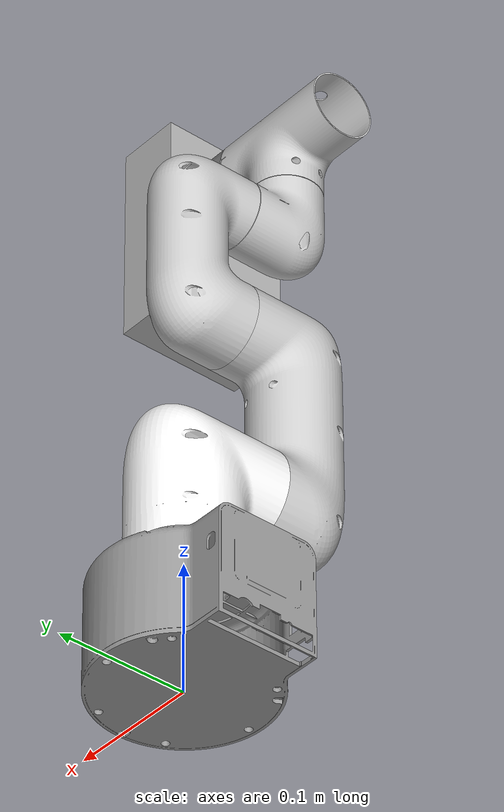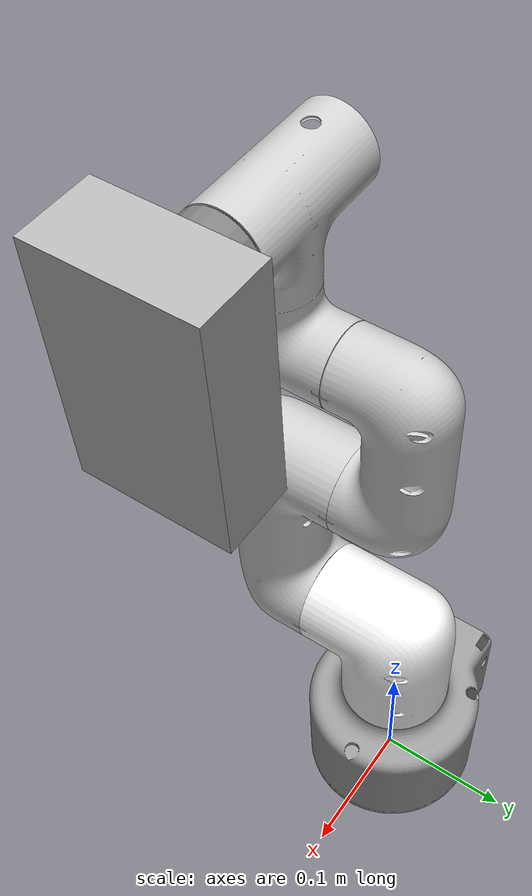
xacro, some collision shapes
<?xml version="1.0"?>
<robot xmlns:xacro="http://www.ros.org/wiki/xacro" name="mycobot320">

  <xacro:include filename="$(find mycobot_description)/urdf/common.xacro" />
  <xacro:property name="width" value=".2" />

  <link name="base">
    <inertial>
       <!-- temporary inertia parameter copied from mycobot 280-->
      <origin xyz="0 0 0.035" rpy="0 0 0" />
      <mass value="10.0" />
      <xacro:cylinder_inertia m="10.0" r="0.05" h="0.07" />
    </inertial>
    <visual>
      <geometry>
        <mesh filename="package://mycobot_description/urdf/320_urdf/mesh/base.dae"/>
      </geometry>
      <origin xyz = "0 0 0 " rpy = " 0 0 0"/>
    </visual>
    <collision>
      <origin xyz = "0 0 0.05 " rpy = " 0 0 0"/>
      <geometry>
        <cylinder length="0.102" radius="0.0725"/>
      </geometry>
    </collision>
  </link>

  <link name="link1">
    <!-- temporary inertia parameter copied from mycobot 280-->
    <inertial>
      <origin xyz="0 0 0.060" rpy="0 0 0" />
      <mass value="0.2" />
      <xacro:cylinder_inertia m="0.2" r="0.05" h="0.08" />
    </inertial>
    <visual>
      <geometry>
        <mesh filename="package://mycobot_description/urdf/320_urdf/mesh/link1.dae"/>
      </geometry>
      <origin xyz = "0 0 0 " rpy = " 0 0 0"/>
    </visual>
    <collision>
      <origin xyz = "0 0 -0.02 " rpy = " 0 0 0"/>
      <geometry>
        <cylinder length="0.106" radius="0.043"/>
      </geometry>
    </collision>
  </link>

  <link name="link2">
    <!-- temporary inertia parameter copied from mycobot 280-->
    <inertial>
      <origin xyz="0.01 0 0.06" rpy="0 0 0" />
      <mass value="0.4" />
      <xacro:cylinder_inertia m="0.4" r="0.05" h="0.155" />
    </inertial>
    <visual>
      <geometry>
        <mesh filename="package://mycobot_description/urdf/320_urdf/mesh/link2.dae"/>
      </geometry>
      <origin xyz = "0 0 0.0587 " rpy = " 0 0 3.1415926"/>
    </visual>
    <collision>
      <origin xyz = "0.07 0 0.095 " rpy = " 0 -1.5708 0"/>
      <geometry>
        <cylinder length="0.18" radius="0.036"/>
      </geometry>
    </collision>
  </link>

  <link name="link3">
    <!-- temporary inertia parameter copied from mycobot 280-->
    <inertial>
      <origin xyz="-0.01 0 0.05" rpy="0 0 0" />
      <mass value="0.4" />
      <xacro:cylinder_inertia m="0.4" r="0.05" h="0.155" />
    </inertial>
    <visual>
      <geometry>
        <mesh filename="package://mycobot_description/urdf/320_urdf/mesh/link3.dae"/>
      </geometry>
      <origin xyz = "0 0 0.038 " rpy = " 0 0 3.1415926"/>
    </visual>
    <collision>
      <origin xyz = "0.044 0 0 " rpy = " 0 -1.5708 0"/>
      <geometry>
        <cylinder length="0.14" radius="0.0305"/>
      </geometry>
    </collision>
  </link>

  <link name="link4">
    <!-- temporary inertia parameter copied from mycobot 280-->
    <inertial>
      <origin xyz="0 0 0.05" rpy="0 0 0" />
      <mass value="0.2" />
      <xacro:cylinder_inertia m="0.2" r="0.05" h="0.05" />
    </inertial>
    <visual>
      <geometry>
        <mesh filename="package://mycobot_description/urdf/320_urdf/mesh/link4.dae"/>
      </geometry>
      <origin xyz = "0 -0.001 0 " rpy = " 0 0 0"/>
    </visual>
    <collision>
      <origin xyz = "0.0 -0.014 0 " rpy = " 0 -1.5708 1.5708"/>
      <geometry>
        <cylinder length="0.083" radius="0.029"/>
      </geometry>
    </collision>
  </link>

  <link name="link5">
    <!-- temporary inertia parameter copied from mycobot 280-->
    <inertial>
      <origin xyz="0 0 0.037" rpy="0 0 0" />
      <mass value="0.5" />
      <xacro:cylinder_inertia m="0.5" r="0.05" h="0.06" />
    </inertial>
    <visual>
      <geometry>
        <mesh filename="package://mycobot_description/urdf/320_urdf/mesh/link5.dae"/>
      </geometry>
      <origin xyz = "0 0.002  0 " rpy = " 0  0 3.1415926"/>
    </visual>
    <collision>
      <origin xyz = "0 -0.01 0 " rpy = " 1.5708 1.5708 0"/>
      <geometry>
        <cylinder length="0.0849" radius="0.029"/>
      </geometry>
    </collision>
  </link>

  <link name="link6">
    <!-- temporary inertia parameter copied from mycobot 280-->
    <inertial>
      <origin xyz="0 0.0025 0" rpy="${M_PI/2} 0 0" />
      <mass value="0.1" />
      <xacro:cylinder_inertia m="0.1" r="0.02" h="0.005" />
    </inertial>
    <visual>
      <geometry>
        <cylinder length="0.02" radius="0.026"/>
      </geometry>
      <material name = "grey">
        <color rgba = "0.5 0.5 0.5 1"/>
      </material>
      <origin xyz = "0 0 -0.01 " rpy = " 0 0 0"/>
    </visual>
    <collision>
      <origin xyz = "0.0 0 -0.01 " rpy = " 0 0 0"/>
      <geometry>
        <cylinder length="0.0225" radius="0.026"/>
      </geometry>
    </collision>
  </link>

   <link name="gripper">
    <!-- temporary inertia parameter -->
    <inertial>
      <origin xyz="0 0 0.03" rpy="0 0 0" />
      <mass value="0.1" />
      <xacro:cylinder_inertia m="0.1" r="0.02" h="0.005" />
    </inertial>
    <visual>
      <geometry>
        <mesh filename="package://mycobot_description/urdf/320_urdf/mesh/gripper.dae"/>
      </geometry>
      <origin xyz = "0 0 0" rpy = "0 0 0"/>
    </visual>
    <collision>
      <origin xyz = "0 0.04 0.03" rpy = "0 0 ${pi/2}"/>
      <geometry>
        <box size="0.16 0.1 0.05"/>
      </geometry>
    </collision>
  </link>

  <joint name="joint1" type="revolute">
    <axis xyz="0 0 1"/>
    <limit effort = "100.0" lower = "${-pi}" upper = "${pi}" velocity = "1.0"/>
    <parent link="base"/>
    <child link="link1"/>
    <origin xyz= "0 0 0.17846" rpy = "0 0 0"/>
    <dynamics damping="1.0e-6" friction="2.0e-1" />
  </joint>

  <joint name="joint2" type="revolute">
    <axis xyz="0 0 1"/>
    <limit effort = "100.0" lower = "${-pi}" upper = "${pi}" velocity = "1.0"/>
    <parent link="link1"/>
    <child link="link2"/>
    <origin xyz= "0 0 0" rpy = "0 -1.57080  1.57080"/>
    <dynamics damping="1.0e-6" friction="2.0e-1" />
  </joint>

  <joint name="joint3" type="revolute">
    <axis xyz=" 0 0 1"/>
    <limit effort = "100.0" lower = "${-pi}" upper = "${pi}" velocity = "1.0"/>
    <parent link="link2"/>
    <child link="link3"/>
    <origin xyz= "0.13635 0 0" rpy = "0 0 0"/>
    <dynamics damping="1.0e-6" friction="2.0e-1" />
  </joint>

  <joint name="joint4" type="revolute">
    <axis xyz=" 0 0 1"/>
    <limit effort = "100.0" lower = "${-pi}" upper = "${pi}" velocity = "1.0"/>
    <parent link="link3"/>
    <child link="link4"/>
    <origin xyz= "0.1 0  0.090" rpy = "0 0 1.57080"/>
    <dynamics damping="1.0e-6" friction="2.0e-1" />
  </joint>

  <joint name="joint5" type="revolute">
    <axis xyz="0 0 1"/>
    <limit effort = "100.0" lower = "${-pi}" upper = "${pi}" velocity = "1.0"/>
    <parent link="link4"/>
    <child link="link5"/>
    <origin xyz= "0 -0.08515 0" rpy = "1.57080 -1.57080 0"/>
    <dynamics damping="1.0e-6" friction="2.0e-1" />
  </joint>

  <joint name="joint6" type="revolute">
    <axis xyz="0 0 1"/>
    <limit effort = "100.0" lower = "${-pi}" upper = "${pi}" velocity = "1.0"/>
    <parent link="link5"/>
    <child link="link6"/>
    <origin xyz= "0 0.06 0" rpy = "-1.57080 0 0 "/>
    <dynamics damping="1.0e-6" friction="2.0e-1" />
  </joint>

  <joint name="gripper_to_link6" type="fixed">
    <axis xyz="0 0 0"/>
    <parent link="link6"/>
    <child link="gripper"/>
    <origin xyz= "0 0 0" rpy = "0 0 0 "/>
  </joint>

  <transmission name="joint1_trans">
    <provideFeedback>true</provideFeedback>
    <implicitSpringDamper>0</implicitSpringDamper>
    <motorTorqueConstant>0.418</motorTorqueConstant>
    <type>transmission_interface/SimpleTransmission</type>
    <joint name="joint1">
      <hardwareInterface>hardware_interface/PositionJointInterface</hardwareInterface>
    </joint>
    <actuator name="joint1_motor">
      <hardwareInterface>hardware_interface/PositionJointInterface</hardwareInterface>
      <mechanicalReduction>1</mechanicalReduction>
    </actuator>
  </transmission>
  <transmission name="joint2_trans">
    <provideFeedback>true</provideFeedback>
    <implicitSpringDamper>0</implicitSpringDamper>
    <motorTorqueConstant>0.418</motorTorqueConstant>
    <type>transmission_interface/SimpleTransmission</type>
    <joint name="joint2">
      <hardwareInterface>hardware_interface/PositionJointInterface</hardwareInterface>
    </joint>
    <actuator name="joint2_motor">
      <hardwareInterface>hardware_interface/PositionJointInterface</hardwareInterface>
      <mechanicalReduction>1</mechanicalReduction>
    </actuator>
  </transmission>
  <transmission name="joint3_trans">
    <provideFeedback>true</provideFeedback>
    <implicitSpringDamper>0</implicitSpringDamper>
    <motorTorqueConstant>0.418</motorTorqueConstant>
    <type>transmission_interface/SimpleTransmission</type>
    <joint name="joint3">
      <hardwareInterface>hardware_interface/PositionJointInterface</hardwareInterface>
    </joint>
    <actuator name="joint3_motor">
      <hardwareInterface>hardware_interface/PositionJointInterface</hardwareInterface>
      <mechanicalReduction>1</mechanicalReduction>
    </actuator>
  </transmission>
  <transmission name="joint4_trans">
    <provideFeedback>true</provideFeedback>
    <implicitSpringDamper>0</implicitSpringDamper>
    <motorTorqueConstant>0.418</motorTorqueConstant>
    <type>transmission_interface/SimpleTransmission</type>
    <joint name="joint4">
      <hardwareInterface>hardware_interface/PositionJointInterface</hardwareInterface>
    </joint>
    <actuator name="joint4_motor">
      <hardwareInterface>hardware_interface/PositionJointInterface</hardwareInterface>
      <mechanicalReduction>1</mechanicalReduction>
    </actuator>
  </transmission>
  <transmission name="joint5_trans">
    <provideFeedback>true</provideFeedback>
    <implicitSpringDamper>0</implicitSpringDamper>
    <motorTorqueConstant>0.418</motorTorqueConstant>
    <type>transmission_interface/SimpleTransmission</type>
    <joint name="joint5">
      <hardwareInterface>hardware_interface/PositionJointInterface</hardwareInterface>
    </joint>
    <actuator name="joint5_motor">
      <hardwareInterface>hardware_interface/PositionJointInterface</hardwareInterface>
      <mechanicalReduction>1</mechanicalReduction>
    </actuator>
  </transmission>
  <transmission name="joint6_trans">
    <provideFeedback>true</provideFeedback>
    <implicitSpringDamper>0</implicitSpringDamper>
    <motorTorqueConstant>0.418</motorTorqueConstant>
    <type>transmission_interface/SimpleTransmission</type>
    <joint name="joint6">
      <hardwareInterface>hardware_interface/PositionJointInterface</hardwareInterface>
    </joint>
    <actuator name="joint6_motor">
      <hardwareInterface>hardware_interface/PositionJointInterface</hardwareInterface>
      <mechanicalReduction>1</mechanicalReduction>
    </actuator>
  </transmission>

</robot>

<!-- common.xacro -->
<robot name="common" xmlns:xacro="http://ros.org/wiki/xacro">

  <xacro:property name="width" value=".2" />

  <!-- PROPERTY LIST -->
  <!-- All units in m-kg-s-radians unit system -->
  <xacro:property name="M_PI" value="3.14159" />
  <xacro:property name="SCALE_MM" value="0.001"/>
  <xacro:property name="SCALE_CM" value="0.01"/>

  <!-- Inertial macros. Units are kg*m^2 -->
  <xacro:macro name="box_inertia" params="m x y z">
    <inertia ixx="${m*(y*y+z*z)/12}" ixy = "0" ixz = "0"
      iyy="${m*(z*z+x*x)/12}" iyz = "0"
      izz="${m*(x*x+y*y)/12}" />
  </xacro:macro>
  <xacro:macro name="cylinder_inertia" params="m r h">
    <inertia ixx="${m*(3*r*r+h*h)/12}" ixy="0" ixz="0"
      iyy="${m*(3*r*r+h*h)/12}" iyz="0"
      izz="${m*r*r/2}" />
  </xacro:macro>
  <xacro:macro name="sphere_inertia" params="m r">
    <inertia ixx="${m*r*r/5}" ixy="0" ixz="0"
      iyy="${m*r*r/5}" iyz="0"
      izz="${m*r*r/5}" />
  </xacro:macro>

</robot>
